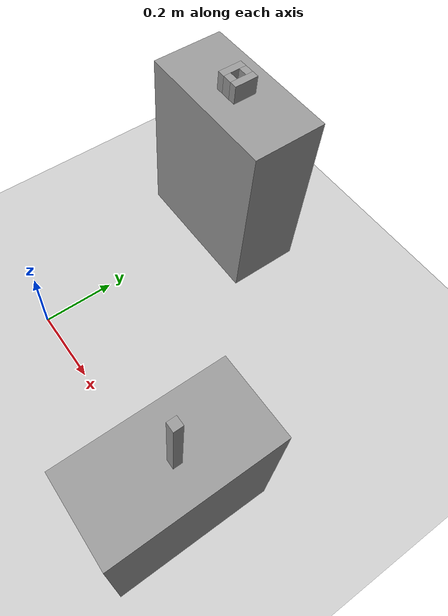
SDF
<sdf version="1.6">
 <world name="default">
  <light name="sun" type="directional">
   <pose>0 0 10 0 -0 0</pose>
   <diffuse>0.8 0.8 0.8 1</diffuse>
   <specular>0.2 0.2 0.2 1</specular>
   <attenuation>
    <range>1000</range>
    <constant>0.9</constant>
    <linear>0.01</linear>
    <quadratic>0.001</quadratic>
   </attenuation>
   <direction>-0.5 0.1 -0.9</direction>
  </light>
  <model name="ground_plane">
   <static>1</static>
   <link name="link">
    <collision name="collision">
     <geometry><plane><normal>0 0 1</normal><size>100 100</size></plane></geometry>
     <surface>
      <contact><collide_bitmask>65535</collide_bitmask></contact>
      <friction><ode><mu>100</mu><mu2>50</mu2></ode></friction>
     </surface>
    </collision>
    <visual name="visual">
     <cast_shadows>0</cast_shadows>
     <geometry><plane><normal>0 0 1</normal><size>100 100</size></plane></geometry>
     <material>
      <script><uri>file://media/materials/scripts/gazebo.material</uri><name>Gazebo/Grey</name></script>
     </material>
    </visual>
   </link>
  </model>
  <gravity>0 0 -9.8</gravity>
  <magnetic_field>6e-06 2.3e-05 -4.2e-05</magnetic_field>
  <atmosphere type="adiabatic"/>
  <physics name="default_physics" default="0" type="ode">
   <max_step_size>0.001</max_step_size>
   <real_time_factor>1</real_time_factor>
   <real_time_update_rate>1000</real_time_update_rate>
  </physics>
  <scene><ambient>0.4 0.4 0.4 1</ambient><background>0.7 0.7 0.7 1</background><shadows>1</shadows></scene>
  <audio><device>default</device></audio>
  <spherical_coordinates>
   <surface_model>EARTH_WGS84</surface_model>
   <latitude_deg>0</latitude_deg>
   <longitude_deg>0</longitude_deg>
   <elevation>0</elevation>
   <heading_deg>0</heading_deg>
  </spherical_coordinates>
  <model name="table1">
   <link name="link">
    <inertial>
     <pose>0.6 0 0.2 0 -0 0</pose>
     <mass>10</mass>
     <inertia>
      <ixx>0.166667</ixx>
      <ixy>0</ixy>
      <ixz>0</ixz>
      <iyy>0.166667</iyy>
      <iyz>0</iyz>
      <izz>0.166667</izz>
     </inertia>
    </inertial>
    <visual name="visual">
     <pose>0.6 0 0.2 0 -0 0</pose>
     <geometry><box><size>0.2 0.4 0.4</size></box></geometry>
     <material>
      <script><name>Gazebo/Grey</name><uri>file://media/materials/scripts/gazebo.material</uri></script>
      <shader type="pixel"/>
     </material>
    </visual>
    <collision name="collision">
     <pose>0.6 0 0.2 0 -0 0</pose>
     <geometry><box><size>0.2 0.4 0.4</size></box></geometry>
     <surface>
      <friction>
       <ode><mu>1</mu><mu2>1</mu2><fdir1>0 0 0</fdir1><slip1>0</slip1><slip2>0</slip2></ode>
       <torsional>
        <coefficient>1</coefficient>
        <patch_radius>0</patch_radius>
        <surface_radius>0</surface_radius>
        <use_patch_radius>1</use_patch_radius>
        <ode><slip>0</slip></ode>
       </torsional>
      </friction>
      <bounce><restitution_coefficient>0</restitution_coefficient><threshold>1e+06</threshold></bounce>
      <contact>
       <collide_without_contact>0</collide_without_contact>
       <collide_without_contact_bitmask>1</collide_without_contact_bitmask>
       <collide_bitmask>1</collide_bitmask>
       <ode>
        <soft_cfm>0</soft_cfm>
        <soft_erp>0.2</soft_erp>
        <kp>1e+13</kp>
        <kd>1</kd>
        <max_vel>0.01</max_vel>
        <min_depth>0</min_depth>
       </ode>
       <bullet>
        <split_impulse>1</split_impulse>
        <split_impulse_penetration_threshold>-0.01</split_impulse_penetration_threshold>
        <soft_cfm>0</soft_cfm>
        <soft_erp>0.2</soft_erp>
        <kp>1e+13</kp>
        <kd>1</kd>
       </bullet>
      </contact>
     </surface>
    </collision>
   </link>
   <static>1</static>
  </model>
  <model name="object">
   <link name="link">
    <inertial>
     <pose>0.615 0 0.5 0 -0 0</pose>
     <mass>0.05</mass>
     <inertia><ixx>0.01</ixx><ixy>0</ixy><ixz>0</ixz><iyy>0.01</iyy><iyz>0</iyz><izz>0.01</izz></inertia>
    </inertial>
    <visual name="visual">
     <geometry><box><size>0.02 0.02 0.2</size></box></geometry>
     <material>
      <script><name>Gazebo/Grey</name><uri>file://media/materials/scripts/gazebo.material</uri></script>
      <shader type="pixel"/>
     </material>
     <pose>0.615 0 0.5 0 -0 0</pose>
    </visual>
    <collision name="collision">
     <pose>0.615 0 0.5 0 -0 0</pose>
     <geometry><box><size>0.02 0.02 0.2</size></box></geometry>
     <surface>
      <friction>
       <ode><mu>1.5</mu><mu2>1.5</mu2><fdir1>0 0 0</fdir1><slip1>0</slip1><slip2>0</slip2></ode>
       <torsional>
        <coefficient>1</coefficient>
        <patch_radius>0</patch_radius>
        <surface_radius>0</surface_radius>
        <use_patch_radius>1</use_patch_radius>
        <ode><slip>0</slip></ode>
       </torsional>
      </friction>
      <bounce><restitution_coefficient>0.1</restitution_coefficient><threshold>1e+06</threshold></bounce>
      <contact>
       <collide_without_contact>0</collide_without_contact>
       <collide_without_contact_bitmask>1</collide_without_contact_bitmask>
       <collide_bitmask>1</collide_bitmask>
       <ode>
        <soft_cfm>0</soft_cfm>
        <soft_erp>0.2</soft_erp>
        <kp>1e+13</kp>
        <kd>1</kd>
        <max_vel>0.1</max_vel>
        <min_depth>0</min_depth>
       </ode>
       <bullet>
        <split_impulse>1</split_impulse>
        <split_impulse_penetration_threshold>-0.01</split_impulse_penetration_threshold>
        <soft_cfm>0</soft_cfm>
        <soft_erp>0.2</soft_erp>
        <kp>1e+13</kp>
        <kd>1</kd>
       </bullet>
      </contact>
     </surface>
    </collision>
   </link>
   <static>0</static>
   <pose>1e-06 -3.7e-05 -1e-06 2e-05 -2e-06 7.3e-05</pose>
  </model>
  <model name="table2">
   <link name="link">
    <inertial>
     <pose>0 0.6 0.25 0 -0 0</pose>
     <mass>10</mass>
     <inertia>
      <ixx>0.166667</ixx>
      <ixy>0</ixy>
      <ixz>0</ixz>
      <iyy>0.166667</iyy>
      <iyz>0</iyz>
      <izz>0.166667</izz>
     </inertia>
    </inertial>
    <visual name="visual">
     <pose>0 0.6 0.25 0 -0 0</pose>
     <geometry><box><size>0.4 0.2 0.5</size></box></geometry>
     <material>
      <script><name>Gazebo/Grey</name><uri>file://media/materials/scripts/gazebo.material</uri></script>
      <shader type="pixel"/>
     </material>
    </visual>
    <collision name="collision">
     <pose>0 0.6 0.25 0 -0 0</pose>
     <geometry><box><size>0.4 0.2 0.5</size></box></geometry>
     <surface>
      <friction>
       <ode><mu>1</mu><mu2>1</mu2><fdir1>0 0 0</fdir1><slip1>0</slip1><slip2>0</slip2></ode>
       <torsional>
        <coefficient>1</coefficient>
        <patch_radius>0</patch_radius>
        <surface_radius>0</surface_radius>
        <use_patch_radius>1</use_patch_radius>
        <ode><slip>0</slip></ode>
       </torsional>
      </friction>
      <bounce><restitution_coefficient>0</restitution_coefficient><threshold>1e+06</threshold></bounce>
      <contact>
       <collide_without_contact>0</collide_without_contact>
       <collide_without_contact_bitmask>1</collide_without_contact_bitmask>
       <collide_bitmask>1</collide_bitmask>
       <ode>
        <soft_cfm>0</soft_cfm>
        <soft_erp>0.2</soft_erp>
        <kp>1e+13</kp>
        <kd>1</kd>
        <max_vel>0.01</max_vel>
        <min_depth>0</min_depth>
       </ode>
       <bullet>
        <split_impulse>1</split_impulse>
        <split_impulse_penetration_threshold>-0.01</split_impulse_penetration_threshold>
        <soft_cfm>0</soft_cfm>
        <soft_erp>0.2</soft_erp>
        <kp>1e+13</kp>
        <kd>1</kd>
       </bullet>
      </contact>
     </surface>
    </collision>
   </link>
   <static>1</static>
  </model>
  <model name="hole">
   <link name="hole_link1">
    <inertial>
     <pose>0.0225 0.6 0.525 0 -0 0</pose>
     <mass>0.5</mass>
     <inertia><ixx>0.001</ixx><iyy>0.001</iyy><izz>0.001</izz><ixy>0</ixy><ixz>0</ixz><iyz>0</iyz></inertia>
    </inertial>
    <visual name="hole_visual1">
     <pose>0.0225 0.6 0.525 0 -0 0</pose>
     <geometry><box><size>0.02 0.065 0.05</size></box></geometry>
     <material>
      <script><name>Gazebo/Grey</name><uri>file://media/materials/scripts/gazebo.material</uri></script>
      <shader type="pixel"/>
     </material>
    </visual>
    <collision name="hole_collision1">
     <pose>0.0225 0.6 0.525 0 -0 0</pose>
     <geometry><box><size>0.02 0.065 0.05</size></box></geometry>
    </collision>
   </link>
   <link name="hole_link2">
    <inertial>
     <pose>-0.0225 0.6 0.525 0 -0 0</pose>
     <mass>0.5</mass>
     <inertia><ixx>0.001</ixx><iyy>0.001</iyy><izz>0.001</izz><ixy>0</ixy><ixz>0</ixz><iyz>0</iyz></inertia>
    </inertial>
    <visual name="hole_visual2">
     <pose>-0.0225 0.6 0.525 0 -0 0</pose>
     <geometry><box><size>0.02 0.065 0.05</size></box></geometry>
     <material>
      <script><name>Gazebo/Grey</name><uri>file://media/materials/scripts/gazebo.material</uri></script>
      <shader type="pixel"/>
     </material>
    </visual>
    <collision name="hole_collision2">
     <pose>-0.0225 0.6 0.525 0 -0 0</pose>
     <geometry><box><size>0.02 0.065 0.05</size></box></geometry>
    </collision>
   </link>
   <link name="hole_link3">
    <inertial>
     <pose>0 0.5775 0.525 0 -0 0</pose>
     <mass>0.5</mass>
     <inertia><ixx>0.001</ixx><iyy>0.001</iyy><izz>0.001</izz><ixy>0</ixy><ixz>0</ixz><iyz>0</iyz></inertia>
    </inertial>
    <visual name="hole_visual3">
     <pose>0 0.5775 0.525 0 -0 0</pose>
     <geometry><box><size>0.025 0.02 0.05</size></box></geometry>
     <material>
      <script><name>Gazebo/Grey</name><uri>file://media/materials/scripts/gazebo.material</uri></script>
      <shader type="pixel"/>
     </material>
    </visual>
    <collision name="hole_collision3">
     <pose>0 0.5775 0.525 0 -0 0</pose>
     <geometry><box><size>0.025 0.02 0.05</size></box></geometry>
    </collision>
   </link>
   <link name="hole_link4">
    <inertial>
     <pose>0 0.6225 0.525 0 -0 0</pose>
     <mass>0.5</mass>
     <inertia><ixx>0.001</ixx><iyy>0.001</iyy><izz>0.001</izz><ixy>0</ixy><ixz>0</ixz><iyz>0</iyz></inertia>
    </inertial>
    <visual name="hole_visual4">
     <pose>0 0.6225 0.525 0 -0 0</pose>
     <geometry><box><size>0.025 0.02 0.05</size></box></geometry>
     <material>
      <script><name>Gazebo/Grey</name><uri>file://media/materials/scripts/gazebo.material</uri></script>
      <shader type="pixel"/>
     </material>
    </visual>
    <collision name="hole_collision4">
     <pose>0 0.6225 0.525 0 -0 0</pose>
     <geometry><box><size>0.025 0.02 0.05</size></box></geometry>
    </collision>
   </link>
   <static>1</static>
  </model>
 </world>
</sdf>
